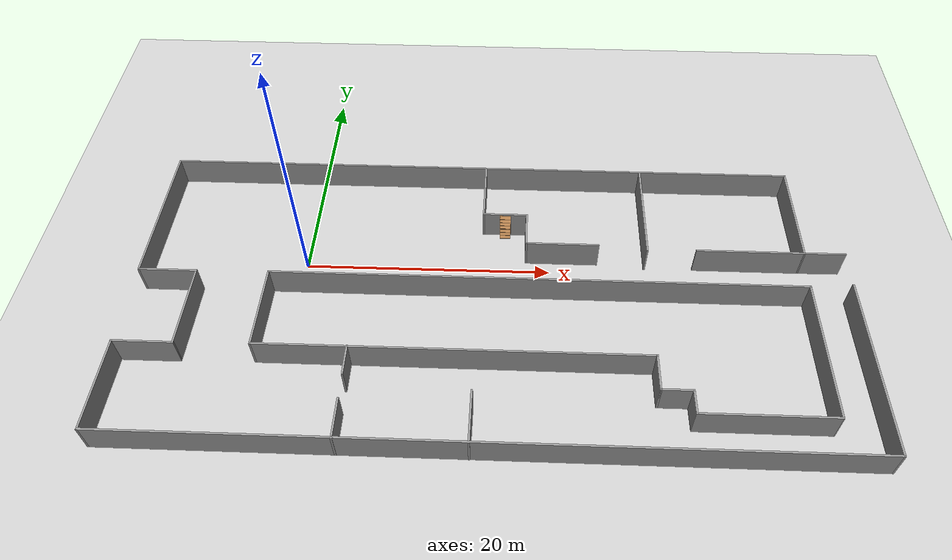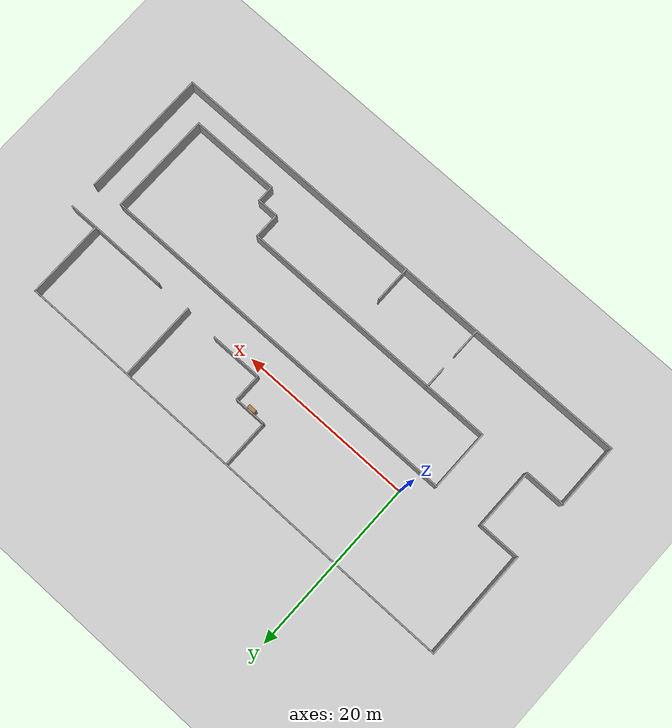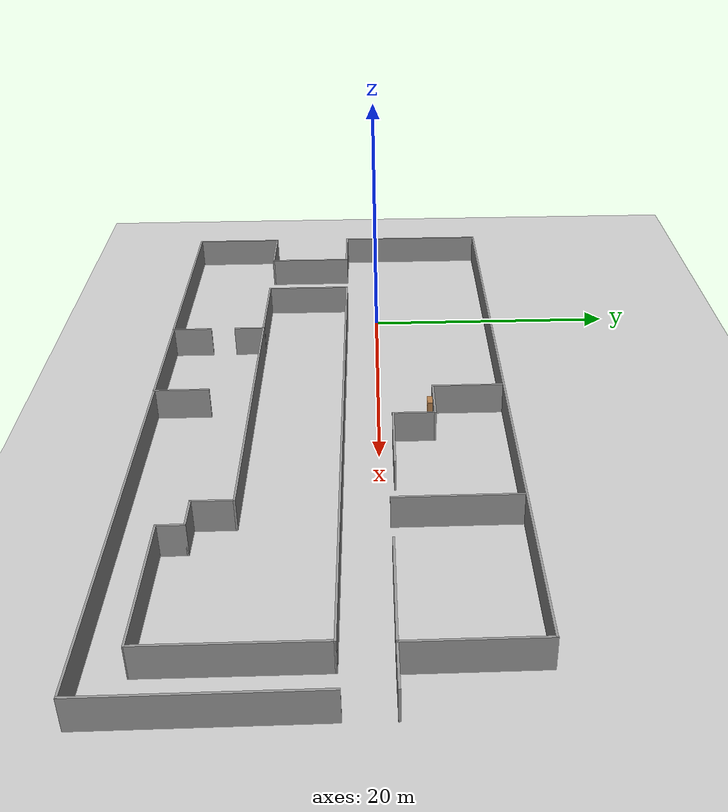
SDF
<sdf version="1.7">
 <world name="default">
  <model name="ground_plane">
   <static>1</static>
   <link name="link">
    <collision name="collision">
     <geometry><plane><normal>0 0 1</normal><size>100 100</size></plane></geometry>
     <surface>
      <contact><collide_bitmask>65535</collide_bitmask></contact>
      <friction><ode><mu>100</mu><mu2>50</mu2></ode></friction>
     </surface>
    </collision>
    <visual name="visual">
     <cast_shadows>0</cast_shadows>
     <geometry><plane><normal>0 0 1</normal><size>100 100</size></plane></geometry>
     <material>
      <script><uri>file://media/materials/scripts/gazebo.material</uri><name>Gazebo/Grey</name></script>
     </material>
    </visual>
   </link>
  </model>
  <model name="Untitled">
   <pose>15.5252 -3.67448 0 0 -0 0</pose>
   <link name="Wall_10">
    <collision name="Wall_10_Collision">
     <geometry><box><size>12.5 0.15 2.5</size></box></geometry>
     <pose>0 0 1.25 0 -0 0</pose>
    </collision>
    <visual name="Wall_10_Visual">
     <pose>0 0 1.25 0 -0 0</pose>
     <geometry><box><size>12.5 0.15 2.5</size></box></geometry>
     <material>
      <script><uri>file://media/materials/scripts/gazebo.material</uri><name>Gazebo/Grey</name></script>
      <ambient>1 1 1 1</ambient>
     </material>
     <meta><layer>0</layer></meta>
    </visual>
    <pose>-28.2031 7.10336 0 0 -0 -1.5708</pose>
   </link>
   <link name="Wall_11">
    <collision name="Wall_11_Collision">
     <geometry><box><size>4.75 0.15 2.5</size></box></geometry>
     <pose>0 0 1.25 0 -0 0</pose>
    </collision>
    <visual name="Wall_11_Visual">
     <pose>0 0 1.25 0 -0 0</pose>
     <geometry><box><size>4.75 0.15 2.5</size></box></geometry>
     <material>
      <script><uri>file://media/materials/scripts/gazebo.material</uri><name>Gazebo/Grey</name></script>
      <ambient>1 1 1 1</ambient>
     </material>
     <meta><layer>0</layer></meta>
    </visual>
    <pose>-25.9031 0.928364 0 0 -0 0</pose>
   </link>
   <link name="Wall_12">
    <collision name="Wall_12_Collision">
     <geometry><box><size>7 0.15 2.5</size></box></geometry>
     <pose>0 0 1.25 0 -0 0</pose>
    </collision>
    <visual name="Wall_12_Visual">
     <pose>0 0 1.25 0 -0 0</pose>
     <geometry><box><size>7 0.15 2.5</size></box></geometry>
     <material>
      <script><uri>file://media/materials/scripts/gazebo.material</uri><name>Gazebo/Grey</name></script>
      <ambient>1 1 1 1</ambient>
     </material>
     <meta><layer>0</layer></meta>
    </visual>
    <pose>-23.6031 -2.49664 0 0 -0 -1.5708</pose>
   </link>
   <link name="Wall_13">
    <collision name="Wall_13_Collision">
     <geometry><box><size>4.75 0.15 2.5</size></box></geometry>
     <pose>0 0 1.25 0 -0 0</pose>
    </collision>
    <visual name="Wall_13_Visual">
     <pose>0 0 1.25 0 -0 0</pose>
     <geometry><box><size>4.75 0.15 2.5</size></box></geometry>
     <material>
      <script><uri>file://media/materials/scripts/gazebo.material</uri><name>Gazebo/Grey</name></script>
      <ambient>1 1 1 1</ambient>
     </material>
     <meta><layer>0</layer></meta>
    </visual>
    <pose>-25.9031 -5.92164 0 0 -0 3.14159</pose>
   </link>
   <link name="Wall_14">
    <collision name="Wall_14_Collision">
     <geometry><box><size>7.5 0.15 2.5</size></box></geometry>
     <pose>0 0 1.25 0 -0 0</pose>
    </collision>
    <visual name="Wall_14_Visual">
     <pose>0 0 1.25 0 -0 0</pose>
     <geometry><box><size>7.5 0.15 2.5</size></box></geometry>
     <material>
      <script><uri>file://media/materials/scripts/gazebo.material</uri><name>Gazebo/Grey</name></script>
      <ambient>1 1 1 1</ambient>
     </material>
     <meta><layer>0</layer></meta>
    </visual>
    <pose>-28.2031 -9.59664 0 0 -0 -1.5708</pose>
   </link>
   <link name="Wall_18">
    <collision name="Wall_18_Collision">
     <geometry><box><size>42.75 0.15 2.5</size></box></geometry>
     <pose>0 0 1.25 0 -0 0</pose>
    </collision>
    <visual name="Wall_18_Visual">
     <pose>0 0 1.25 0 -0 0</pose>
     <geometry><box><size>42.75 0.15 2.5</size></box></geometry>
     <material>
      <script><uri>file://media/materials/scripts/gazebo.material</uri><name>Gazebo/Grey</name></script>
      <ambient>1 1 1 1</ambient>
     </material>
     <meta><layer>0</layer></meta>
    </visual>
    <pose>3.43893 1.04183 0 0 -0 0</pose>
   </link>
   <link name="Wall_20">
    <collision name="Wall_20_Collision">
     <geometry><box><size>53.25 0.15 2.5</size></box></geometry>
     <pose>0 0 1.25 0 -0 0</pose>
    </collision>
    <visual name="Wall_20_Visual">
     <pose>0 0 1.25 0 -0 0</pose>
     <geometry><box><size>53.25 0.15 2.5</size></box></geometry>
     <material>
      <script><uri>file://media/materials/scripts/gazebo.material</uri><name>Gazebo/Grey</name></script>
      <ambient>1 1 1 1</ambient>
     </material>
     <meta><layer>0</layer></meta>
    </visual>
    <pose>-1.65313 13.2784 0 0 -0 0</pose>
   </link>
   <link name="Wall_23">
    <collision name="Wall_23_Collision">
     <geometry><box><size>9 0.15 2.5</size></box></geometry>
     <pose>0 0 1.25 0 -0 0</pose>
    </collision>
    <visual name="Wall_23_Visual">
     <pose>0 0 1.25 0 -0 0</pose>
     <geometry><box><size>9 0.15 2.5</size></box></geometry>
     <material>
      <script><uri>file://media/materials/scripts/gazebo.material</uri><name>Gazebo/Grey</name></script>
      <ambient>1 1 1 1</ambient>
     </material>
     <meta><layer>0</layer></meta>
    </visual>
    <pose>24.9343 8.87727 0 0 -0 1.5708</pose>
   </link>
   <link name="Wall_25">
    <collision name="Wall_25_Collision">
     <geometry><box><size>8.75 0.15 2.5</size></box></geometry>
     <pose>0 0 1.25 0 -0 0</pose>
    </collision>
    <visual name="Wall_25_Visual">
     <pose>0 0 1.25 0 -0 0</pose>
     <geometry><box><size>8.75 0.15 2.5</size></box></geometry>
     <material>
      <script><uri>file://media/materials/scripts/gazebo.material</uri><name>Gazebo/Grey</name></script>
      <ambient>1 1 1 1</ambient>
     </material>
     <meta><layer>0</layer></meta>
    </visual>
    <pose>20.6343 4.45227 0 0 -0 3.14159</pose>
   </link>
   <link name="Wall_27">
    <collision name="Wall_27_Collision">
     <geometry><box><size>9 0.15 2.5</size></box></geometry>
     <pose>0 0 1.25 0 -0 0</pose>
    </collision>
    <visual name="Wall_27_Visual">
     <pose>0 0 1.25 0 -0 0</pose>
     <geometry><box><size>9 0.15 2.5</size></box></geometry>
     <material>
      <script><uri>file://media/materials/scripts/gazebo.material</uri><name>Gazebo/Grey</name></script>
      <ambient>1 1 1 1</ambient>
     </material>
     <meta><layer>0</layer></meta>
    </visual>
    <pose>12.3285 8.81407 0 0 -0 1.5708</pose>
   </link>
   <link name="Wall_30">
    <collision name="Wall_30_Collision">
     <geometry><box><size>6 0.15 2.5</size></box></geometry>
     <pose>0 0 1.25 0 -0 0</pose>
    </collision>
    <visual name="Wall_30_Visual">
     <pose>0 0 1.25 0 -0 0</pose>
     <geometry><box><size>6 0.15 2.5</size></box></geometry>
     <material>
      <script><uri>file://media/materials/scripts/gazebo.material</uri><name>Gazebo/Grey</name></script>
      <ambient>1 1 1 1</ambient>
     </material>
     <meta><layer>0</layer></meta>
    </visual>
    <pose>5.45714 4.7348 0 0 -0 3.14159</pose>
   </link>
   <link name="Wall_33">
    <collision name="Wall_33_Collision">
     <geometry><box><size>3.25 0.15 2.5</size></box></geometry>
     <pose>0 0 1.25 0 -0 0</pose>
    </collision>
    <visual name="Wall_33_Visual">
     <pose>0 0 1.25 0 -0 0</pose>
     <geometry><box><size>3.25 0.15 2.5</size></box></geometry>
     <material>
      <script><uri>file://media/materials/scripts/gazebo.material</uri><name>Gazebo/Grey</name></script>
      <ambient>1 1 1 1</ambient>
     </material>
     <meta><layer>0</layer></meta>
    </visual>
    <pose>2.53214 6.2848 0 0 -0 1.5708</pose>
   </link>
   <link name="Wall_34">
    <collision name="Wall_34_Collision">
     <geometry><box><size>3.75 0.15 2.5</size></box></geometry>
     <pose>0 0 1.25 0 -0 0</pose>
    </collision>
    <visual name="Wall_34_Visual">
     <pose>0 0 1.25 0 -0 0</pose>
     <geometry><box><size>3.75 0.15 2.5</size></box></geometry>
     <material>
      <script><uri>file://media/materials/scripts/gazebo.material</uri><name>Gazebo/Grey</name></script>
      <ambient>1 1 1 1</ambient>
     </material>
     <meta><layer>0</layer></meta>
    </visual>
    <pose>0.732141 7.8348 0 0 -0 3.14159</pose>
   </link>
   <link name="Wall_35">
    <collision name="Wall_35_Collision">
     <geometry><box><size>5.5 0.15 2.5</size></box></geometry>
     <pose>0 0 1.25 0 -0 0</pose>
    </collision>
    <visual name="Wall_35_Visual">
     <pose>0 0 1.25 0 -0 0</pose>
     <geometry><box><size>5.5 0.15 2.5</size></box></geometry>
     <material>
      <script><uri>file://media/materials/scripts/gazebo.material</uri><name>Gazebo/Grey</name></script>
      <ambient>1 1 1 1</ambient>
     </material>
     <meta><layer>0</layer></meta>
    </visual>
    <pose>-1.06786 10.5098 0 0 -0 1.5708</pose>
   </link>
   <link name="Wall_37">
    <collision name="Wall_37_Collision">
     <geometry><box><size>7 0.15 2.5</size></box></geometry>
     <pose>0 0 1.25 0 -0 0</pose>
    </collision>
    <visual name="Wall_37_Visual">
     <pose>0 0 1.25 0 -0 0</pose>
     <geometry><box><size>7 0.15 2.5</size></box></geometry>
     <material>
      <script><uri>file://media/materials/scripts/gazebo.material</uri><name>Gazebo/Grey</name></script>
      <ambient>1 1 1 1</ambient>
     </material>
     <meta><layer>0</layer></meta>
    </visual>
    <pose>-17.8611 -2.38317 0 0 -0 -1.5708</pose>
   </link>
   <link name="Wall_40">
    <collision name="Wall_40_Collision">
     <geometry><box><size>30.25 0.15 2.5</size></box></geometry>
     <pose>0 0 1.25 0 -0 0</pose>
    </collision>
    <visual name="Wall_40_Visual">
     <pose>0 0 1.25 0 -0 0</pose>
     <geometry><box><size>30.25 0.15 2.5</size></box></geometry>
     <material>
      <script><uri>file://media/materials/scripts/gazebo.material</uri><name>Gazebo/Grey</name></script>
      <ambient>1 1 1 1</ambient>
     </material>
     <meta><layer>0</layer></meta>
    </visual>
    <pose>-2.81107 -5.80817 0 0 -0 0</pose>
   </link>
   <link name="Wall_41">
    <collision name="Wall_41_Collision">
     <geometry><box><size>3 0.15 2.5</size></box></geometry>
     <pose>0 0 1.25 0 -0 0</pose>
    </collision>
    <visual name="Wall_41_Visual">
     <pose>0 0 1.25 0 -0 0</pose>
     <geometry><box><size>3 0.15 2.5</size></box></geometry>
     <material>
      <script><uri>file://media/materials/scripts/gazebo.material</uri><name>Gazebo/Grey</name></script>
      <ambient>1 1 1 1</ambient>
     </material>
     <meta><layer>0</layer></meta>
    </visual>
    <pose>12.2389 -7.23317 0 0 -0 -1.5708</pose>
   </link>
   <link name="Wall_42">
    <collision name="Wall_42_Collision">
     <geometry><box><size>2.5 0.15 2.5</size></box></geometry>
     <pose>0 0 1.25 0 -0 0</pose>
    </collision>
    <visual name="Wall_42_Visual">
     <pose>0 0 1.25 0 -0 0</pose>
     <geometry><box><size>2.5 0.15 2.5</size></box></geometry>
     <material>
      <script><uri>file://media/materials/scripts/gazebo.material</uri><name>Gazebo/Grey</name></script>
      <ambient>1 1 1 1</ambient>
     </material>
     <meta><layer>0</layer></meta>
    </visual>
    <pose>13.4139 -8.65817 0 0 -0 0</pose>
   </link>
   <link name="Wall_43">
    <collision name="Wall_43_Collision">
     <geometry><box><size>2 0.15 2.5</size></box></geometry>
     <pose>0 0 1.25 0 -0 0</pose>
    </collision>
    <visual name="Wall_43_Visual">
     <pose>0 0 1.25 0 -0 0</pose>
     <geometry><box><size>2 0.15 2.5</size></box></geometry>
     <material>
      <script><uri>file://media/materials/scripts/gazebo.material</uri><name>Gazebo/Grey</name></script>
      <ambient>1 1 1 1</ambient>
     </material>
     <meta><layer>0</layer></meta>
    </visual>
    <pose>14.5889 -9.58318 0 0 -0 -1.5708</pose>
   </link>
   <link name="Wall_44">
    <collision name="Wall_44_Collision">
     <geometry><box><size>10.25 0.15 2.5</size></box></geometry>
     <pose>0 0 1.25 0 -0 0</pose>
    </collision>
    <visual name="Wall_44_Visual">
     <pose>0 0 1.25 0 -0 0</pose>
     <geometry><box><size>10.25 0.15 2.5</size></box></geometry>
     <material>
      <script><uri>file://media/materials/scripts/gazebo.material</uri><name>Gazebo/Grey</name></script>
      <ambient>1 1 1 1</ambient>
     </material>
     <meta><layer>0</layer></meta>
    </visual>
    <pose>19.6389 -10.5082 0 0 -0 0</pose>
   </link>
   <link name="Wall_45">
    <collision name="Wall_45_Collision">
     <geometry><box><size>11.7001 0.15 2.5</size></box></geometry>
     <pose>0 0 1.25 0 -0 0</pose>
    </collision>
    <visual name="Wall_45_Visual">
     <pose>0 0 1.25 0 -0 0</pose>
     <geometry><box><size>11.7001 0.15 2.5</size></box></geometry>
     <material>
      <script><uri>file://media/materials/scripts/gazebo.material</uri><name>Gazebo/Grey</name></script>
      <ambient>1 1 1 1</ambient>
     </material>
     <meta><layer>0</layer></meta>
    </visual>
    <pose>24.7139 -4.73317 0 0 -0 1.56647</pose>
   </link>
   <link name="Wall_48">
    <collision name="Wall_48_Collision">
     <geometry><box><size>56.5 0.15 2.5</size></box></geometry>
     <pose>0 0 1.25 0 -0 0</pose>
    </collision>
    <visual name="Wall_48_Visual">
     <pose>0 0 1.25 0 -0 0</pose>
     <geometry><box><size>56.5 0.15 2.5</size></box></geometry>
     <material>
      <script><uri>file://media/materials/scripts/gazebo.material</uri><name>Gazebo/Grey</name></script>
      <ambient>1 1 1 1</ambient>
     </material>
     <meta><layer>0</layer></meta>
    </visual>
    <pose>-0.028129 -13.2716 0 0 -0 0</pose>
   </link>
   <link name="Wall_49">
    <collision name="Wall_49_Collision">
     <geometry><box><size>14.75 0.15 2.5</size></box></geometry>
     <pose>0 0 1.25 0 -0 0</pose>
    </collision>
    <visual name="Wall_49_Visual">
     <pose>0 0 1.25 0 -0 0</pose>
     <geometry><box><size>14.75 0.15 2.5</size></box></geometry>
     <material>
      <script><uri>file://media/materials/scripts/gazebo.material</uri><name>Gazebo/Grey</name></script>
      <ambient>1 1 1 1</ambient>
     </material>
     <meta><layer>0</layer></meta>
    </visual>
    <pose>28.1469 -5.97164 0 0 -0 1.5708</pose>
   </link>
   <link name="Wall_52">
    <collision name="Wall_52_Collision">
     <geometry><box><size>4.25 0.15 2.5</size></box></geometry>
     <pose>0 0 1.25 0 -0 0</pose>
    </collision>
    <visual name="Wall_52_Visual">
     <pose>0 0 1.25 0 -0 0</pose>
     <geometry><box><size>4.25 0.15 2.5</size></box></geometry>
     <material>
      <script><uri>file://media/materials/scripts/gazebo.material</uri><name>Gazebo/Grey</name></script>
      <ambient>1 1 1 1</ambient>
     </material>
     <meta><layer>0</layer></meta>
    </visual>
    <pose>-1.21553 -11.2523 0 0 -0 1.5708</pose>
   </link>
   <link name="Wall_54">
    <collision name="Wall_54_Collision">
     <geometry><box><size>2.5 0.15 2.5</size></box></geometry>
     <pose>0 0 1.25 0 -0 0</pose>
    </collision>
    <visual name="Wall_54_Visual">
     <pose>0 0 1.25 0 -0 0</pose>
     <geometry><box><size>2.5 0.15 2.5</size></box></geometry>
     <material>
      <script><uri>file://media/materials/scripts/gazebo.material</uri><name>Gazebo/Grey</name></script>
      <ambient>1 1 1 1</ambient>
     </material>
     <meta><layer>0</layer></meta>
    </visual>
    <pose>-10.6293 -6.97087 0 0 -0 -1.5708</pose>
   </link>
   <link name="Wall_56">
    <collision name="Wall_56_Collision">
     <geometry><box><size>3.25 0.15 2.5</size></box></geometry>
     <pose>0 0 1.25 0 -0 0</pose>
    </collision>
    <visual name="Wall_56_Visual">
     <pose>0 0 1.25 0 -0 0</pose>
     <geometry><box><size>3.25 0.15 2.5</size></box></geometry>
     <material>
      <script><uri>file://media/materials/scripts/gazebo.material</uri><name>Gazebo/Grey</name></script>
      <ambient>1 1 1 1</ambient>
     </material>
     <meta><layer>0</layer></meta>
    </visual>
    <pose>-10.6293 -11.7523 0 0 -0 1.5708</pose>
   </link>
   <link name="Wall_59">
    <collision name="Wall_59_Collision">
     <geometry><box><size>3.41825 0.15 2.5</size></box></geometry>
     <pose>0 0 1.25 0 -0 0</pose>
    </collision>
    <visual name="Wall_59_Visual">
     <pose>0 0 1.25 0 -0 0</pose>
     <geometry><box><size>3.41825 0.15 2.5</size></box></geometry>
     <material>
      <script><uri>file://media/materials/scripts/gazebo.material</uri><name>Gazebo/Grey</name></script>
      <ambient>1 1 1 1</ambient>
     </material>
     <meta><layer>0</layer></meta>
    </visual>
    <pose>26.5684 4.46762 0 0 -0 -3.1322</pose>
   </link>
   <static>1</static>
  </model>
  <model name="bookshelf_clone_1_clone">
   <static>1</static>
   <link name="link">
    <inertial><mass>1</mass></inertial>
    <collision name="back">
     <pose>0 0.005 0.6 0 -0 0</pose>
     <geometry><box><size>0.9 0.01 1.2</size></box></geometry>
    </collision>
    <visual name="visual1">
     <pose>0 0.005 0.6 0 -0 0</pose>
     <geometry><box><size>0.9 0.01 1.2</size></box></geometry>
     <material>
      <script><uri>file://media/materials/scripts/gazebo.material</uri><name>Gazebo/Wood</name></script>
     </material>
    </visual>
    <collision name="left_side">
     <pose>0.45 -0.195 0.6 0 -0 0</pose>
     <geometry><box><size>0.02 0.4 1.2</size></box></geometry>
    </collision>
    <visual name="visual2">
     <pose>0.45 -0.195 0.6 0 -0 0</pose>
     <geometry><box><size>0.02 0.4 1.2</size></box></geometry>
     <material>
      <script><uri>file://media/materials/scripts/gazebo.material</uri><name>Gazebo/Wood</name></script>
     </material>
    </visual>
    <collision name="right_side">
     <pose>-0.45 -0.195 0.6 0 -0 0</pose>
     <geometry><box><size>0.02 0.4 1.2</size></box></geometry>
    </collision>
    <visual name="visual3">
     <pose>-0.45 -0.195 0.6 0 -0 0</pose>
     <geometry><box><size>0.02 0.4 1.2</size></box></geometry>
     <material>
      <script><uri>file://media/materials/scripts/gazebo.material</uri><name>Gazebo/Wood</name></script>
     </material>
    </visual>
    <collision name="bottom">
     <pose>0 -0.195 0.03 0 -0 0</pose>
     <geometry><box><size>0.88 0.4 0.06</size></box></geometry>
    </collision>
    <visual name="visual4">
     <pose>0 -0.195 0.03 0 -0 0</pose>
     <geometry><box><size>0.88 0.4 0.06</size></box></geometry>
     <material>
      <script><uri>file://media/materials/scripts/gazebo.material</uri><name>Gazebo/Wood</name></script>
     </material>
    </visual>
    <collision name="top">
     <pose>0 -0.195 1.19 0 -0 0</pose>
     <geometry><box><size>0.88 0.4 0.02</size></box></geometry>
    </collision>
    <visual name="visual5">
     <pose>0 -0.195 1.19 0 -0 0</pose>
     <geometry><box><size>0.88 0.4 0.02</size></box></geometry>
     <material>
      <script><uri>file://media/materials/scripts/gazebo.material</uri><name>Gazebo/Wood</name></script>
     </material>
    </visual>
    <collision name="low_shelf">
     <pose>0 -0.195 0.43 0 -0 0</pose>
     <geometry><box><size>0.88 0.4 0.02</size></box></geometry>
    </collision>
    <visual name="visual6">
     <pose>0 -0.195 0.43 0 -0 0</pose>
     <geometry><box><size>0.88 0.4 0.02</size></box></geometry>
     <material>
      <script><uri>file://media/materials/scripts/gazebo.material</uri><name>Gazebo/Wood</name></script>
     </material>
    </visual>
    <collision name="high_shelf">
     <pose>0 -0.195 0.8 0 -0 0</pose>
     <geometry><box><size>0.88 0.4 0.02</size></box></geometry>
    </collision>
    <visual name="visual7">
     <pose>0 -0.195 0.8 0 -0 0</pose>
     <geometry><box><size>0.88 0.4 0.02</size></box></geometry>
     <material>
      <script><uri>file://media/materials/scripts/gazebo.material</uri><name>Gazebo/Wood</name></script>
     </material>
    </visual>
   </link>
   <pose>16.2796 4.05021 0 0 0 -0.000598</pose>
  </model>
  <model name="bookshelf_clone_1_clone_1">
   <static>1</static>
   <link name="link">
    <inertial><mass>1</mass></inertial>
    <collision name="back">
     <pose>0 0.005 0.6 0 -0 0</pose>
     <geometry><box><size>0.9 0.01 1.2</size></box></geometry>
    </collision>
    <visual name="visual1">
     <pose>0 0.005 0.6 0 -0 0</pose>
     <geometry><box><size>0.9 0.01 1.2</size></box></geometry>
     <material>
      <script><uri>file://media/materials/scripts/gazebo.material</uri><name>Gazebo/Wood</name></script>
     </material>
    </visual>
    <collision name="left_side">
     <pose>0.45 -0.195 0.6 0 -0 0</pose>
     <geometry><box><size>0.02 0.4 1.2</size></box></geometry>
    </collision>
    <visual name="visual2">
     <pose>0.45 -0.195 0.6 0 -0 0</pose>
     <geometry><box><size>0.02 0.4 1.2</size></box></geometry>
     <material>
      <script><uri>file://media/materials/scripts/gazebo.material</uri><name>Gazebo/Wood</name></script>
     </material>
    </visual>
    <collision name="right_side">
     <pose>-0.45 -0.195 0.6 0 -0 0</pose>
     <geometry><box><size>0.02 0.4 1.2</size></box></geometry>
    </collision>
    <visual name="visual3">
     <pose>-0.45 -0.195 0.6 0 -0 0</pose>
     <geometry><box><size>0.02 0.4 1.2</size></box></geometry>
     <material>
      <script><uri>file://media/materials/scripts/gazebo.material</uri><name>Gazebo/Wood</name></script>
     </material>
    </visual>
    <collision name="bottom">
     <pose>0 -0.195 0.03 0 -0 0</pose>
     <geometry><box><size>0.88 0.4 0.06</size></box></geometry>
    </collision>
    <visual name="visual4">
     <pose>0 -0.195 0.03 0 -0 0</pose>
     <geometry><box><size>0.88 0.4 0.06</size></box></geometry>
     <material>
      <script><uri>file://media/materials/scripts/gazebo.material</uri><name>Gazebo/Wood</name></script>
     </material>
    </visual>
    <collision name="top">
     <pose>0 -0.195 1.19 0 -0 0</pose>
     <geometry><box><size>0.88 0.4 0.02</size></box></geometry>
    </collision>
    <visual name="visual5">
     <pose>0 -0.195 1.19 0 -0 0</pose>
     <geometry><box><size>0.88 0.4 0.02</size></box></geometry>
     <material>
      <script><uri>file://media/materials/scripts/gazebo.material</uri><name>Gazebo/Wood</name></script>
     </material>
    </visual>
    <collision name="low_shelf">
     <pose>0 -0.195 0.43 0 -0 0</pose>
     <geometry><box><size>0.88 0.4 0.02</size></box></geometry>
    </collision>
    <visual name="visual6">
     <pose>0 -0.195 0.43 0 -0 0</pose>
     <geometry><box><size>0.88 0.4 0.02</size></box></geometry>
     <material>
      <script><uri>file://media/materials/scripts/gazebo.material</uri><name>Gazebo/Wood</name></script>
     </material>
    </visual>
    <collision name="high_shelf">
     <pose>0 -0.195 0.8 0 -0 0</pose>
     <geometry><box><size>0.88 0.4 0.02</size></box></geometry>
    </collision>
    <visual name="visual7">
     <pose>0 -0.195 0.8 0 -0 0</pose>
     <geometry><box><size>0.88 0.4 0.02</size></box></geometry>
     <material>
      <script><uri>file://media/materials/scripts/gazebo.material</uri><name>Gazebo/Wood</name></script>
     </material>
    </visual>
   </link>
   <pose>16.2851 4.05228 1.20996 0 0 -0.012809</pose>
  </model>
 </world>
</sdf>
